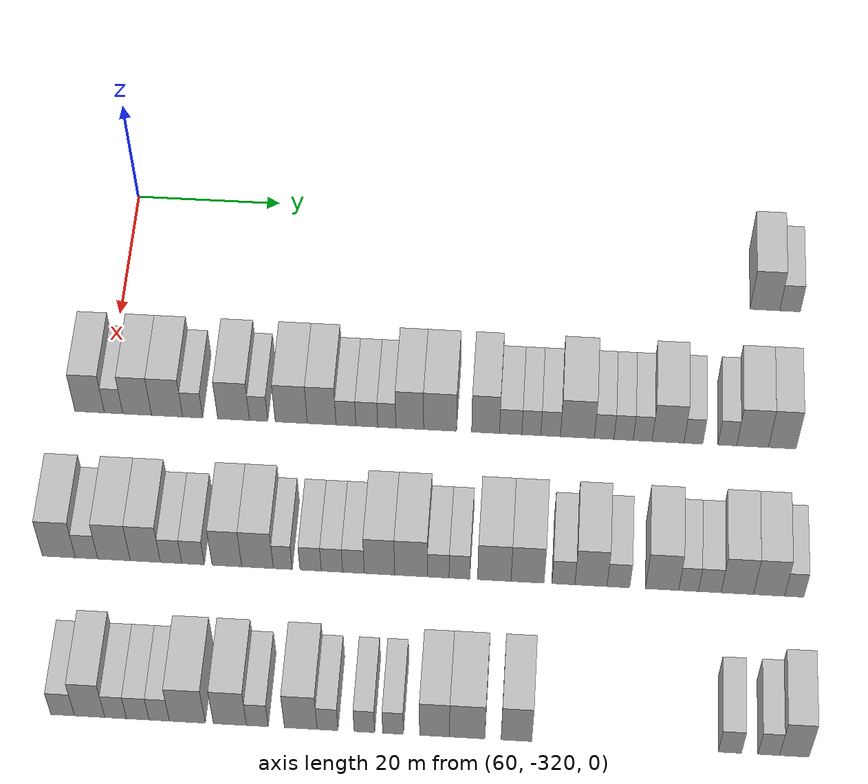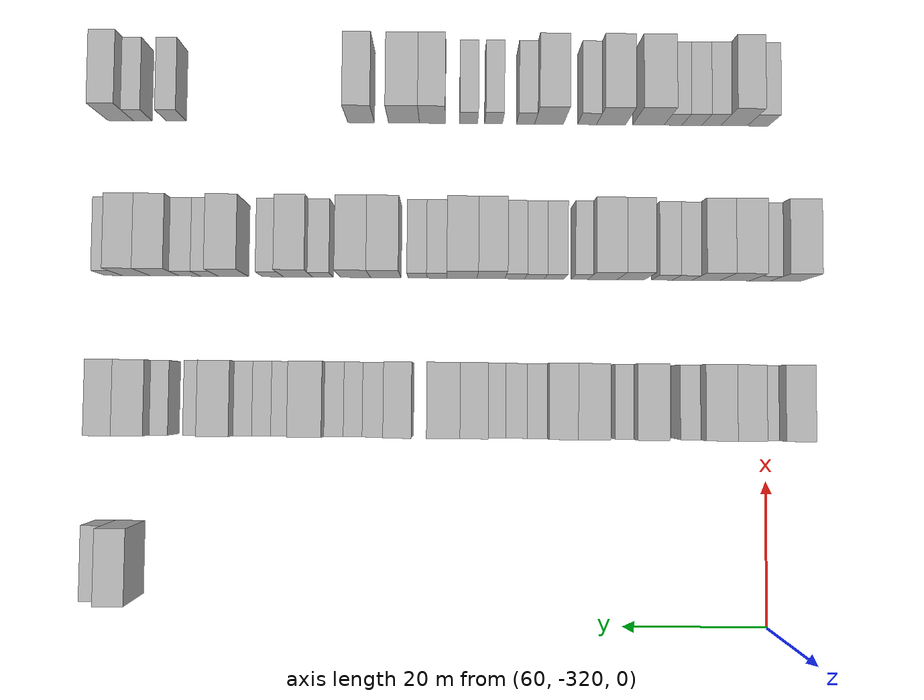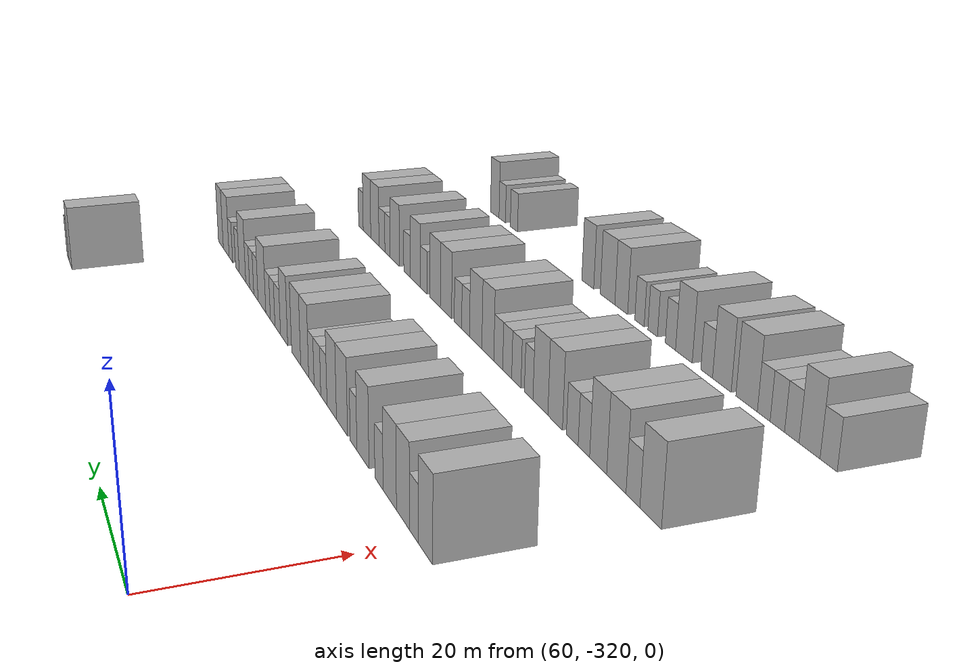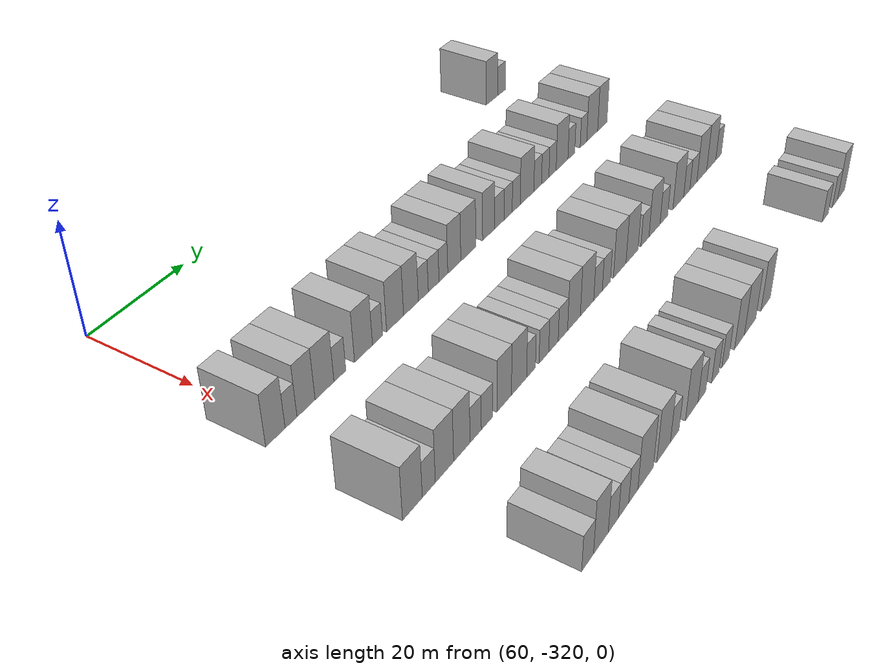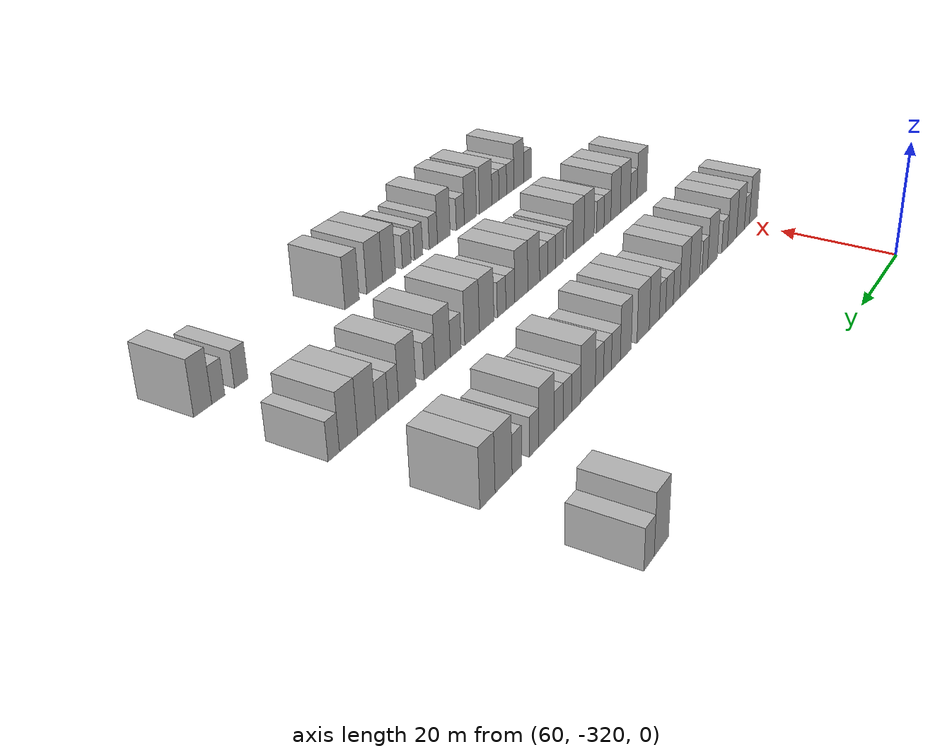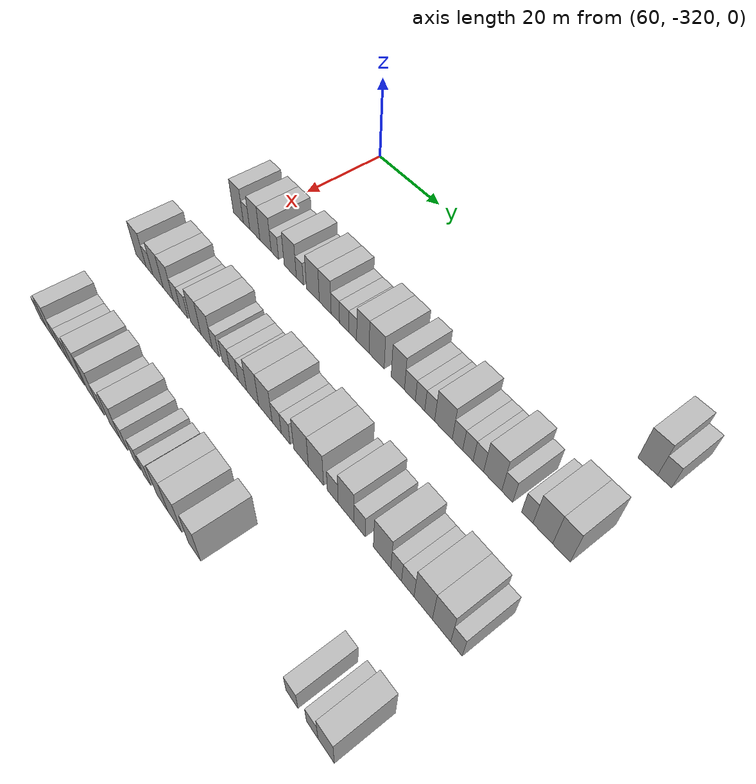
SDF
<sdf version="1.6">
 <world name="default">
  <model name="building_404">
   <static>1</static>
   <pose>69.0000 -232.0221 0 0.000000 0.000000 0.000000</pose>
   <link name="link">
    <pose>0 0 4.50 0 0 0</pose>
    <collision name="collision"><geometry><box><size>10.0000 4.0621 9.0000</size></box></geometry></collision>
    <visual name="visual">
     <cast_shadows>0</cast_shadows>
     <geometry><box><size>10.0000 4.0621 9.0000</size></box></geometry>
     <material>
      <script>
       <uri>model://HANNAS_wall/materials/scripts</uri>
       <uri>model://HANNAS_wall/materials/textures</uri>
       <name>vrc/HANNAS_wall</name>
      </script>
     </material>
    </visual>
   </link>
  </model>
  <model name="building_405">
   <static>1</static>
   <pose>69.0000 -228.5827 0 0.000000 0.000000 0.000000</pose>
   <link name="link">
    <pose>0 0 3.00 0 0 0</pose>
    <collision name="collision"><geometry><box><size>10.0000 2.8167 6.0000</size></box></geometry></collision>
    <visual name="visual">
     <cast_shadows>0</cast_shadows>
     <geometry><box><size>10.0000 2.8167 6.0000</size></box></geometry>
     <material>
      <script>
       <uri>model://HANNAS_wall/materials/scripts</uri>
       <uri>model://HANNAS_wall/materials/textures</uri>
       <name>vrc/HANNAS_wall</name>
      </script>
     </material>
    </visual>
   </link>
  </model>
  <model name="building_573">
   <static>1</static>
   <pose>91.0000 -321.9920 0 0.000000 0.000000 0.000000</pose>
   <link name="link">
    <pose>0 0 4.50 0 0 0</pose>
    <collision name="collision"><geometry><box><size>10.0000 3.9420 9.0000</size></box></geometry></collision>
    <visual name="visual">
     <cast_shadows>0</cast_shadows>
     <geometry><box><size>10.0000 3.9420 9.0000</size></box></geometry>
     <material>
      <script>
       <uri>model://HANNAS_wall/materials/scripts</uri>
       <uri>model://HANNAS_wall/materials/textures</uri>
       <name>vrc/HANNAS_wall</name>
      </script>
     </material>
    </visual>
   </link>
  </model>
  <model name="building_574">
   <static>1</static>
   <pose>91.0000 -318.7920 0 0.000000 0.000000 0.000000</pose>
   <link name="link">
    <pose>0 0 3.00 0 0 0</pose>
    <collision name="collision"><geometry><box><size>10.0000 2.4579 6.0000</size></box></geometry></collision>
    <visual name="visual">
     <cast_shadows>0</cast_shadows>
     <geometry><box><size>10.0000 2.4579 6.0000</size></box></geometry>
     <material>
      <script>
       <uri>model://HANNAS_wall/materials/scripts</uri>
       <uri>model://HANNAS_wall/materials/textures</uri>
       <name>vrc/HANNAS_wall</name>
      </script>
     </material>
    </visual>
   </link>
  </model>
  <model name="building_575">
   <static>1</static>
   <pose>91.0000 -315.6370 0 0.000000 0.000000 0.000000</pose>
   <link name="link">
    <pose>0 0 4.50 0 0 0</pose>
    <collision name="collision"><geometry><box><size>10.0000 3.8522 9.0000</size></box></geometry></collision>
    <visual name="visual">
     <cast_shadows>0</cast_shadows>
     <geometry><box><size>10.0000 3.8522 9.0000</size></box></geometry>
     <material>
      <script>
       <uri>model://HANNAS_wall/materials/scripts</uri>
       <uri>model://HANNAS_wall/materials/textures</uri>
       <name>vrc/HANNAS_wall</name>
      </script>
     </material>
    </visual>
   </link>
  </model>
  <model name="building_576">
   <static>1</static>
   <pose>91.0000 -311.6289 0 0.000000 0.000000 0.000000</pose>
   <link name="link">
    <pose>0 0 4.50 0 0 0</pose>
    <collision name="collision"><geometry><box><size>10.0000 4.1640 9.0000</size></box></geometry></collision>
    <visual name="visual">
     <cast_shadows>0</cast_shadows>
     <geometry><box><size>10.0000 4.1640 9.0000</size></box></geometry>
     <material>
      <script>
       <uri>model://HANNAS_wall/materials/scripts</uri>
       <uri>model://HANNAS_wall/materials/textures</uri>
       <name>vrc/HANNAS_wall</name>
      </script>
     </material>
    </visual>
   </link>
  </model>
  <model name="building_577">
   <static>1</static>
   <pose>91.0000 -308.2008 0 0.000000 0.000000 0.000000</pose>
   <link name="link">
    <pose>0 0 3.00 0 0 0</pose>
    <collision name="collision"><geometry><box><size>10.0000 2.6922 6.0000</size></box></geometry></collision>
    <visual name="visual">
     <cast_shadows>0</cast_shadows>
     <geometry><box><size>10.0000 2.6922 6.0000</size></box></geometry>
     <material>
      <script>
       <uri>model://HANNAS_wall/materials/scripts</uri>
       <uri>model://HANNAS_wall/materials/textures</uri>
       <name>vrc/HANNAS_wall</name>
      </script>
     </material>
    </visual>
   </link>
  </model>
  <model name="building_578">
   <static>1</static>
   <pose>91.0000 -302.7324 0 0.000000 0.000000 0.000000</pose>
   <link name="link">
    <pose>0 0 4.50 0 0 0</pose>
    <collision name="collision"><geometry><box><size>10.0000 4.2447 9.0000</size></box></geometry></collision>
    <visual name="visual">
     <cast_shadows>0</cast_shadows>
     <geometry><box><size>10.0000 4.2447 9.0000</size></box></geometry>
     <material>
      <script>
       <uri>model://HANNAS_wall/materials/scripts</uri>
       <uri>model://HANNAS_wall/materials/textures</uri>
       <name>vrc/HANNAS_wall</name>
      </script>
     </material>
    </visual>
   </link>
  </model>
  <model name="building_579">
   <static>1</static>
   <pose>91.0000 -299.3903 0 0.000000 0.000000 0.000000</pose>
   <link name="link">
    <pose>0 0 3.00 0 0 0</pose>
    <collision name="collision"><geometry><box><size>10.0000 2.4395 6.0000</size></box></geometry></collision>
    <visual name="visual">
     <cast_shadows>0</cast_shadows>
     <geometry><box><size>10.0000 2.4395 6.0000</size></box></geometry>
     <material>
      <script>
       <uri>model://HANNAS_wall/materials/scripts</uri>
       <uri>model://HANNAS_wall/materials/textures</uri>
       <name>vrc/HANNAS_wall</name>
      </script>
     </material>
    </visual>
   </link>
  </model>
  <model name="building_580">
   <static>1</static>
   <pose>91.0000 -295.0295 0 0.000000 0.000000 0.000000</pose>
   <link name="link">
    <pose>0 0 4.50 0 0 0</pose>
    <collision name="collision"><geometry><box><size>10.0000 4.2821 9.0000</size></box></geometry></collision>
    <visual name="visual">
     <cast_shadows>0</cast_shadows>
     <geometry><box><size>10.0000 4.2821 9.0000</size></box></geometry>
     <material>
      <script>
       <uri>model://HANNAS_wall/materials/scripts</uri>
       <uri>model://HANNAS_wall/materials/textures</uri>
       <name>vrc/HANNAS_wall</name>
      </script>
     </material>
    </visual>
   </link>
  </model>
  <model name="building_581">
   <static>1</static>
   <pose>91.0000 -290.9783 0 0.000000 0.000000 0.000000</pose>
   <link name="link">
    <pose>0 0 4.50 0 0 0</pose>
    <collision name="collision"><geometry><box><size>10.0000 3.8203 9.0000</size></box></geometry></collision>
    <visual name="visual">
     <cast_shadows>0</cast_shadows>
     <geometry><box><size>10.0000 3.8203 9.0000</size></box></geometry>
     <material>
      <script>
       <uri>model://HANNAS_wall/materials/scripts</uri>
       <uri>model://HANNAS_wall/materials/textures</uri>
       <name>vrc/HANNAS_wall</name>
      </script>
     </material>
    </visual>
   </link>
  </model>
  <model name="building_582">
   <static>1</static>
   <pose>91.0000 -287.7478 0 0.000000 0.000000 0.000000</pose>
   <link name="link">
    <pose>0 0 3.00 0 0 0</pose>
    <collision name="collision"><geometry><box><size>10.0000 2.6407 6.0000</size></box></geometry></collision>
    <visual name="visual">
     <cast_shadows>0</cast_shadows>
     <geometry><box><size>10.0000 2.6407 6.0000</size></box></geometry>
     <material>
      <script>
       <uri>model://HANNAS_wall/materials/scripts</uri>
       <uri>model://HANNAS_wall/materials/textures</uri>
       <name>vrc/HANNAS_wall</name>
      </script>
     </material>
    </visual>
   </link>
  </model>
  <model name="building_583">
   <static>1</static>
   <pose>91.0000 -284.9772 0 0.000000 0.000000 0.000000</pose>
   <link name="link">
    <pose>0 0 3.00 0 0 0</pose>
    <collision name="collision"><geometry><box><size>10.0000 2.9005 6.0000</size></box></geometry></collision>
    <visual name="visual">
     <cast_shadows>0</cast_shadows>
     <geometry><box><size>10.0000 2.9005 6.0000</size></box></geometry>
     <material>
      <script>
       <uri>model://HANNAS_wall/materials/scripts</uri>
       <uri>model://HANNAS_wall/materials/textures</uri>
       <name>vrc/HANNAS_wall</name>
      </script>
     </material>
    </visual>
   </link>
  </model>
  <model name="building_584">
   <static>1</static>
   <pose>91.0000 -282.3179 0 0.000000 0.000000 0.000000</pose>
   <link name="link">
    <pose>0 0 3.00 0 0 0</pose>
    <collision name="collision"><geometry><box><size>10.0000 2.4183 6.0000</size></box></geometry></collision>
    <visual name="visual">
     <cast_shadows>0</cast_shadows>
     <geometry><box><size>10.0000 2.4183 6.0000</size></box></geometry>
     <material>
      <script>
       <uri>model://HANNAS_wall/materials/scripts</uri>
       <uri>model://HANNAS_wall/materials/textures</uri>
       <name>vrc/HANNAS_wall</name>
      </script>
     </material>
    </visual>
   </link>
  </model>
  <model name="building_585">
   <static>1</static>
   <pose>91.0000 -279.2611 0 0.000000 0.000000 0.000000</pose>
   <link name="link">
    <pose>0 0 4.50 0 0 0</pose>
    <collision name="collision"><geometry><box><size>10.0000 3.6953 9.0000</size></box></geometry></collision>
    <visual name="visual">
     <cast_shadows>0</cast_shadows>
     <geometry><box><size>10.0000 3.6953 9.0000</size></box></geometry>
     <material>
      <script>
       <uri>model://HANNAS_wall/materials/scripts</uri>
       <uri>model://HANNAS_wall/materials/textures</uri>
       <name>vrc/HANNAS_wall</name>
      </script>
     </material>
    </visual>
   </link>
  </model>
  <model name="building_586">
   <static>1</static>
   <pose>91.0000 -275.2277 0 0.000000 0.000000 0.000000</pose>
   <link name="link">
    <pose>0 0 4.50 0 0 0</pose>
    <collision name="collision"><geometry><box><size>10.0000 4.3714 9.0000</size></box></geometry></collision>
    <visual name="visual">
     <cast_shadows>0</cast_shadows>
     <geometry><box><size>10.0000 4.3714 9.0000</size></box></geometry>
     <material>
      <script>
       <uri>model://HANNAS_wall/materials/scripts</uri>
       <uri>model://HANNAS_wall/materials/textures</uri>
       <name>vrc/HANNAS_wall</name>
      </script>
     </material>
    </visual>
   </link>
  </model>
  <model name="building_587">
   <static>1</static>
   <pose>91.0000 -269.1946 0 0.000000 0.000000 0.000000</pose>
   <link name="link">
    <pose>0 0 4.50 0 0 0</pose>
    <collision name="collision"><geometry><box><size>10.0000 3.6949 9.0000</size></box></geometry></collision>
    <visual name="visual">
     <cast_shadows>0</cast_shadows>
     <geometry><box><size>10.0000 3.6949 9.0000</size></box></geometry>
     <material>
      <script>
       <uri>model://HANNAS_wall/materials/scripts</uri>
       <uri>model://HANNAS_wall/materials/textures</uri>
       <name>vrc/HANNAS_wall</name>
      </script>
     </material>
    </visual>
   </link>
  </model>
  <model name="building_588">
   <static>1</static>
   <pose>91.0000 -265.8717 0 0.000000 0.000000 0.000000</pose>
   <link name="link">
    <pose>0 0 3.00 0 0 0</pose>
    <collision name="collision"><geometry><box><size>10.0000 2.9510 6.0000</size></box></geometry></collision>
    <visual name="visual">
     <cast_shadows>0</cast_shadows>
     <geometry><box><size>10.0000 2.9510 6.0000</size></box></geometry>
     <material>
      <script>
       <uri>model://HANNAS_wall/materials/scripts</uri>
       <uri>model://HANNAS_wall/materials/textures</uri>
       <name>vrc/HANNAS_wall</name>
      </script>
     </material>
    </visual>
   </link>
  </model>
  <model name="building_589">
   <static>1</static>
   <pose>91.0000 -263.1401 0 0.000000 0.000000 0.000000</pose>
   <link name="link">
    <pose>0 0 3.00 0 0 0</pose>
    <collision name="collision"><geometry><box><size>10.0000 2.5123 6.0000</size></box></geometry></collision>
    <visual name="visual">
     <cast_shadows>0</cast_shadows>
     <geometry><box><size>10.0000 2.5123 6.0000</size></box></geometry>
     <material>
      <script>
       <uri>model://HANNAS_wall/materials/scripts</uri>
       <uri>model://HANNAS_wall/materials/textures</uri>
       <name>vrc/HANNAS_wall</name>
      </script>
     </material>
    </visual>
   </link>
  </model>
  <model name="building_590">
   <static>1</static>
   <pose>91.0000 -260.5889 0 0.000000 0.000000 0.000000</pose>
   <link name="link">
    <pose>0 0 3.00 0 0 0</pose>
    <collision name="collision"><geometry><box><size>10.0000 2.5900 6.0000</size></box></geometry></collision>
    <visual name="visual">
     <cast_shadows>0</cast_shadows>
     <geometry><box><size>10.0000 2.5900 6.0000</size></box></geometry>
     <material>
      <script>
       <uri>model://HANNAS_wall/materials/scripts</uri>
       <uri>model://HANNAS_wall/materials/textures</uri>
       <name>vrc/HANNAS_wall</name>
      </script>
     </material>
    </visual>
   </link>
  </model>
  <model name="building_591">
   <static>1</static>
   <pose>91.0000 -257.0452 0 0.000000 0.000000 0.000000</pose>
   <link name="link">
    <pose>0 0 4.50 0 0 0</pose>
    <collision name="collision"><geometry><box><size>10.0000 4.4974 9.0000</size></box></geometry></collision>
    <visual name="visual">
     <cast_shadows>0</cast_shadows>
     <geometry><box><size>10.0000 4.4974 9.0000</size></box></geometry>
     <material>
      <script>
       <uri>model://HANNAS_wall/materials/scripts</uri>
       <uri>model://HANNAS_wall/materials/textures</uri>
       <name>vrc/HANNAS_wall</name>
      </script>
     </material>
    </visual>
   </link>
  </model>
  <model name="building_592">
   <static>1</static>
   <pose>91.0000 -253.4997 0 0.000000 0.000000 0.000000</pose>
   <link name="link">
    <pose>0 0 3.00 0 0 0</pose>
    <collision name="collision"><geometry><box><size>10.0000 2.5936 6.0000</size></box></geometry></collision>
    <visual name="visual">
     <cast_shadows>0</cast_shadows>
     <geometry><box><size>10.0000 2.5936 6.0000</size></box></geometry>
     <material>
      <script>
       <uri>model://HANNAS_wall/materials/scripts</uri>
       <uri>model://HANNAS_wall/materials/textures</uri>
       <name>vrc/HANNAS_wall</name>
      </script>
     </material>
    </visual>
   </link>
  </model>
  <model name="building_593">
   <static>1</static>
   <pose>91.0000 -250.9337 0 0.000000 0.000000 0.000000</pose>
   <link name="link">
    <pose>0 0 3.00 0 0 0</pose>
    <collision name="collision"><geometry><box><size>10.0000 2.5385 6.0000</size></box></geometry></collision>
    <visual name="visual">
     <cast_shadows>0</cast_shadows>
     <geometry><box><size>10.0000 2.5385 6.0000</size></box></geometry>
     <material>
      <script>
       <uri>model://HANNAS_wall/materials/scripts</uri>
       <uri>model://HANNAS_wall/materials/textures</uri>
       <name>vrc/HANNAS_wall</name>
      </script>
     </material>
    </visual>
   </link>
  </model>
  <model name="building_594">
   <static>1</static>
   <pose>91.0000 -248.4190 0 0.000000 0.000000 0.000000</pose>
   <link name="link">
    <pose>0 0 3.00 0 0 0</pose>
    <collision name="collision"><geometry><box><size>10.0000 2.4909 6.0000</size></box></geometry></collision>
    <visual name="visual">
     <cast_shadows>0</cast_shadows>
     <geometry><box><size>10.0000 2.4909 6.0000</size></box></geometry>
     <material>
      <script>
       <uri>model://HANNAS_wall/materials/scripts</uri>
       <uri>model://HANNAS_wall/materials/textures</uri>
       <name>vrc/HANNAS_wall</name>
      </script>
     </material>
    </visual>
   </link>
  </model>
  <model name="building_595">
   <static>1</static>
   <pose>91.0000 -245.0603 0 0.000000 0.000000 0.000000</pose>
   <link name="link">
    <pose>0 0 4.50 0 0 0</pose>
    <collision name="collision"><geometry><box><size>10.0000 4.2266 9.0000</size></box></geometry></collision>
    <visual name="visual">
     <cast_shadows>0</cast_shadows>
     <geometry><box><size>10.0000 4.2266 9.0000</size></box></geometry>
     <material>
      <script>
       <uri>model://HANNAS_wall/materials/scripts</uri>
       <uri>model://HANNAS_wall/materials/textures</uri>
       <name>vrc/HANNAS_wall</name>
      </script>
     </material>
    </visual>
   </link>
  </model>
  <model name="building_596">
   <static>1</static>
   <pose>91.0000 -241.7044 0 0.000000 0.000000 0.000000</pose>
   <link name="link">
    <pose>0 0 3.00 0 0 0</pose>
    <collision name="collision"><geometry><box><size>10.0000 2.4851 6.0000</size></box></geometry></collision>
    <visual name="visual">
     <cast_shadows>0</cast_shadows>
     <geometry><box><size>10.0000 2.4851 6.0000</size></box></geometry>
     <material>
      <script>
       <uri>model://HANNAS_wall/materials/scripts</uri>
       <uri>model://HANNAS_wall/materials/textures</uri>
       <name>vrc/HANNAS_wall</name>
      </script>
     </material>
    </visual>
   </link>
  </model>
  <model name="building_597">
   <static>1</static>
   <pose>91.0000 -237.2275 0 0.000000 0.000000 0.000000</pose>
   <link name="link">
    <pose>0 0 3.00 0 0 0</pose>
    <collision name="collision"><geometry><box><size>10.0000 2.4687 6.0000</size></box></geometry></collision>
    <visual name="visual">
     <cast_shadows>0</cast_shadows>
     <geometry><box><size>10.0000 2.4687 6.0000</size></box></geometry>
     <material>
      <script>
       <uri>model://HANNAS_wall/materials/scripts</uri>
       <uri>model://HANNAS_wall/materials/textures</uri>
       <name>vrc/HANNAS_wall</name>
      </script>
     </material>
    </visual>
   </link>
  </model>
  <model name="building_598">
   <static>1</static>
   <pose>91.0000 -233.8986 0 0.000000 0.000000 0.000000</pose>
   <link name="link">
    <pose>0 0 4.50 0 0 0</pose>
    <collision name="collision"><geometry><box><size>10.0000 4.1891 9.0000</size></box></geometry></collision>
    <visual name="visual">
     <cast_shadows>0</cast_shadows>
     <geometry><box><size>10.0000 4.1891 9.0000</size></box></geometry>
     <material>
      <script>
       <uri>model://HANNAS_wall/materials/scripts</uri>
       <uri>model://HANNAS_wall/materials/textures</uri>
       <name>vrc/HANNAS_wall</name>
      </script>
     </material>
    </visual>
   </link>
  </model>
  <model name="building_599">
   <static>1</static>
   <pose>91.0000 -229.9872 0 0.000000 0.000000 0.000000</pose>
   <link name="link">
    <pose>0 0 4.50 0 0 0</pose>
    <collision name="collision"><geometry><box><size>10.0000 3.6336 9.0000</size></box></geometry></collision>
    <visual name="visual">
     <cast_shadows>0</cast_shadows>
     <geometry><box><size>10.0000 3.6336 9.0000</size></box></geometry>
     <material>
      <script>
       <uri>model://HANNAS_wall/materials/scripts</uri>
       <uri>model://HANNAS_wall/materials/textures</uri>
       <name>vrc/HANNAS_wall</name>
      </script>
     </material>
    </visual>
   </link>
  </model>
  <model name="building_765">
   <static>1</static>
   <pose>113.0000 -322.9274 0 0.000000 0.000000 0.000000</pose>
   <link name="link">
    <pose>0 0 4.50 0 0 0</pose>
    <collision name="collision"><geometry><box><size>10.0000 4.2592 9.0000</size></box></geometry></collision>
    <visual name="visual">
     <cast_shadows>0</cast_shadows>
     <geometry><box><size>10.0000 4.2592 9.0000</size></box></geometry>
     <material>
      <script>
       <uri>model://HANNAS_wall/materials/scripts</uri>
       <uri>model://HANNAS_wall/materials/textures</uri>
       <name>vrc/HANNAS_wall</name>
      </script>
     </material>
    </visual>
   </link>
  </model>
  <model name="building_766">
   <static>1</static>
   <pose>113.0000 -319.3512 0 0.000000 0.000000 0.000000</pose>
   <link name="link">
    <pose>0 0 3.00 0 0 0</pose>
    <collision name="collision"><geometry><box><size>10.0000 2.8931 6.0000</size></box></geometry></collision>
    <visual name="visual">
     <cast_shadows>0</cast_shadows>
     <geometry><box><size>10.0000 2.8931 6.0000</size></box></geometry>
     <material>
      <script>
       <uri>model://HANNAS_wall/materials/scripts</uri>
       <uri>model://HANNAS_wall/materials/textures</uri>
       <name>vrc/HANNAS_wall</name>
      </script>
     </material>
    </visual>
   </link>
  </model>
  <model name="building_767">
   <static>1</static>
   <pose>113.0000 -315.8047 0 0.000000 0.000000 0.000000</pose>
   <link name="link">
    <pose>0 0 4.50 0 0 0</pose>
    <collision name="collision"><geometry><box><size>10.0000 4.1999 9.0000</size></box></geometry></collision>
    <visual name="visual">
     <cast_shadows>0</cast_shadows>
     <geometry><box><size>10.0000 4.1999 9.0000</size></box></geometry>
     <material>
      <script>
       <uri>model://HANNAS_wall/materials/scripts</uri>
       <uri>model://HANNAS_wall/materials/textures</uri>
       <name>vrc/HANNAS_wall</name>
      </script>
     </material>
    </visual>
   </link>
  </model>
  <model name="building_768">
   <static>1</static>
   <pose>113.0000 -311.7571 0 0.000000 0.000000 0.000000</pose>
   <link name="link">
    <pose>0 0 4.50 0 0 0</pose>
    <collision name="collision"><geometry><box><size>10.0000 3.8954 9.0000</size></box></geometry></collision>
    <visual name="visual">
     <cast_shadows>0</cast_shadows>
     <geometry><box><size>10.0000 3.8954 9.0000</size></box></geometry>
     <material>
      <script>
       <uri>model://HANNAS_wall/materials/scripts</uri>
       <uri>model://HANNAS_wall/materials/textures</uri>
       <name>vrc/HANNAS_wall</name>
      </script>
     </material>
    </visual>
   </link>
  </model>
  <model name="building_769">
   <static>1</static>
   <pose>113.0000 -308.4352 0 0.000000 0.000000 0.000000</pose>
   <link name="link">
    <pose>0 0 3.00 0 0 0</pose>
    <collision name="collision"><geometry><box><size>10.0000 2.7483 6.0000</size></box></geometry></collision>
    <visual name="visual">
     <cast_shadows>0</cast_shadows>
     <geometry><box><size>10.0000 2.7483 6.0000</size></box></geometry>
     <material>
      <script>
       <uri>model://HANNAS_wall/materials/scripts</uri>
       <uri>model://HANNAS_wall/materials/textures</uri>
       <name>vrc/HANNAS_wall</name>
      </script>
     </material>
    </visual>
   </link>
  </model>
  <model name="building_770">
   <static>1</static>
   <pose>113.0000 -305.6102 0 0.000000 0.000000 0.000000</pose>
   <link name="link">
    <pose>0 0 3.00 0 0 0</pose>
    <collision name="collision"><geometry><box><size>10.0000 2.9017 6.0000</size></box></geometry></collision>
    <visual name="visual">
     <cast_shadows>0</cast_shadows>
     <geometry><box><size>10.0000 2.9017 6.0000</size></box></geometry>
     <material>
      <script>
       <uri>model://HANNAS_wall/materials/scripts</uri>
       <uri>model://HANNAS_wall/materials/textures</uri>
       <name>vrc/HANNAS_wall</name>
      </script>
     </material>
    </visual>
   </link>
  </model>
  <model name="building_771">
   <static>1</static>
   <pose>113.0000 -301.2559 0 0.000000 0.000000 0.000000</pose>
   <link name="link">
    <pose>0 0 4.50 0 0 0</pose>
    <collision name="collision"><geometry><box><size>10.0000 3.8068 9.0000</size></box></geometry></collision>
    <visual name="visual">
     <cast_shadows>0</cast_shadows>
     <geometry><box><size>10.0000 3.8068 9.0000</size></box></geometry>
     <material>
      <script>
       <uri>model://HANNAS_wall/materials/scripts</uri>
       <uri>model://HANNAS_wall/materials/textures</uri>
       <name>vrc/HANNAS_wall</name>
      </script>
     </material>
    </visual>
   </link>
  </model>
  <model name="building_772">
   <static>1</static>
   <pose>113.0000 -297.3191 0 0.000000 0.000000 0.000000</pose>
   <link name="link">
    <pose>0 0 4.50 0 0 0</pose>
    <collision name="collision"><geometry><box><size>10.0000 4.0668 9.0000</size></box></geometry></collision>
    <visual name="visual">
     <cast_shadows>0</cast_shadows>
     <geometry><box><size>10.0000 4.0668 9.0000</size></box></geometry>
     <material>
      <script>
       <uri>model://HANNAS_wall/materials/scripts</uri>
       <uri>model://HANNAS_wall/materials/textures</uri>
       <name>vrc/HANNAS_wall</name>
      </script>
     </material>
    </visual>
   </link>
  </model>
  <model name="building_773">
   <static>1</static>
   <pose>113.0000 -294.0722 0 0.000000 0.000000 0.000000</pose>
   <link name="link">
    <pose>0 0 3.00 0 0 0</pose>
    <collision name="collision"><geometry><box><size>10.0000 2.4270 6.0000</size></box></geometry></collision>
    <visual name="visual">
     <cast_shadows>0</cast_shadows>
     <geometry><box><size>10.0000 2.4270 6.0000</size></box></geometry>
     <material>
      <script>
       <uri>model://HANNAS_wall/materials/scripts</uri>
       <uri>model://HANNAS_wall/materials/textures</uri>
       <name>vrc/HANNAS_wall</name>
      </script>
     </material>
    </visual>
   </link>
  </model>
  <model name="building_774">
   <static>1</static>
   <pose>113.0000 -290.4904 0 0.000000 0.000000 0.000000</pose>
   <link name="link">
    <pose>0 0 3.00 0 0 0</pose>
    <collision name="collision"><geometry><box><size>10.0000 2.7368 6.0000</size></box></geometry></collision>
    <visual name="visual">
     <cast_shadows>0</cast_shadows>
     <geometry><box><size>10.0000 2.7368 6.0000</size></box></geometry>
     <material>
      <script>
       <uri>model://HANNAS_wall/materials/scripts</uri>
       <uri>model://HANNAS_wall/materials/textures</uri>
       <name>vrc/HANNAS_wall</name>
      </script>
     </material>
    </visual>
   </link>
  </model>
  <model name="building_775">
   <static>1</static>
   <pose>113.0000 -287.7537 0 0.000000 0.000000 0.000000</pose>
   <link name="link">
    <pose>0 0 3.00 0 0 0</pose>
    <collision name="collision"><geometry><box><size>10.0000 2.7366 6.0000</size></box></geometry></collision>
    <visual name="visual">
     <cast_shadows>0</cast_shadows>
     <geometry><box><size>10.0000 2.7366 6.0000</size></box></geometry>
     <material>
      <script>
       <uri>model://HANNAS_wall/materials/scripts</uri>
       <uri>model://HANNAS_wall/materials/textures</uri>
       <name>vrc/HANNAS_wall</name>
      </script>
     </material>
    </visual>
   </link>
  </model>
  <model name="building_776">
   <static>1</static>
   <pose>113.0000 -284.9900 0 0.000000 0.000000 0.000000</pose>
   <link name="link">
    <pose>0 0 3.00 0 0 0</pose>
    <collision name="collision"><geometry><box><size>10.0000 2.7908 6.0000</size></box></geometry></collision>
    <visual name="visual">
     <cast_shadows>0</cast_shadows>
     <geometry><box><size>10.0000 2.7908 6.0000</size></box></geometry>
     <material>
      <script>
       <uri>model://HANNAS_wall/materials/scripts</uri>
       <uri>model://HANNAS_wall/materials/textures</uri>
       <name>vrc/HANNAS_wall</name>
      </script>
     </material>
    </visual>
   </link>
  </model>
  <model name="building_777">
   <static>1</static>
   <pose>113.0000 -281.6524 0 0.000000 0.000000 0.000000</pose>
   <link name="link">
    <pose>0 0 4.50 0 0 0</pose>
    <collision name="collision"><geometry><box><size>10.0000 3.8845 9.0000</size></box></geometry></collision>
    <visual name="visual">
     <cast_shadows>0</cast_shadows>
     <geometry><box><size>10.0000 3.8845 9.0000</size></box></geometry>
     <material>
      <script>
       <uri>model://HANNAS_wall/materials/scripts</uri>
       <uri>model://HANNAS_wall/materials/textures</uri>
       <name>vrc/HANNAS_wall</name>
      </script>
     </material>
    </visual>
   </link>
  </model>
  <model name="building_778">
   <static>1</static>
   <pose>113.0000 -277.6161 0 0.000000 0.000000 0.000000</pose>
   <link name="link">
    <pose>0 0 4.50 0 0 0</pose>
    <collision name="collision"><geometry><box><size>10.0000 4.1882 9.0000</size></box></geometry></collision>
    <visual name="visual">
     <cast_shadows>0</cast_shadows>
     <geometry><box><size>10.0000 4.1882 9.0000</size></box></geometry>
     <material>
      <script>
       <uri>model://HANNAS_wall/materials/scripts</uri>
       <uri>model://HANNAS_wall/materials/textures</uri>
       <name>vrc/HANNAS_wall</name>
      </script>
     </material>
    </visual>
   </link>
  </model>
  <model name="building_779">
   <static>1</static>
   <pose>113.0000 -274.1437 0 0.000000 0.000000 0.000000</pose>
   <link name="link">
    <pose>0 0 3.00 0 0 0</pose>
    <collision name="collision"><geometry><box><size>10.0000 2.7565 6.0000</size></box></geometry></collision>
    <visual name="visual">
     <cast_shadows>0</cast_shadows>
     <geometry><box><size>10.0000 2.7565 6.0000</size></box></geometry>
     <material>
      <script>
       <uri>model://HANNAS_wall/materials/scripts</uri>
       <uri>model://HANNAS_wall/materials/textures</uri>
       <name>vrc/HANNAS_wall</name>
      </script>
     </material>
    </visual>
   </link>
  </model>
  <model name="building_780">
   <static>1</static>
   <pose>113.0000 -271.4380 0 0.000000 0.000000 0.000000</pose>
   <link name="link">
    <pose>0 0 3.00 0 0 0</pose>
    <collision name="collision"><geometry><box><size>10.0000 2.6548 6.0000</size></box></geometry></collision>
    <visual name="visual">
     <cast_shadows>0</cast_shadows>
     <geometry><box><size>10.0000 2.6548 6.0000</size></box></geometry>
     <material>
      <script>
       <uri>model://HANNAS_wall/materials/scripts</uri>
       <uri>model://HANNAS_wall/materials/textures</uri>
       <name>vrc/HANNAS_wall</name>
      </script>
     </material>
    </visual>
   </link>
  </model>
  <model name="building_781">
   <static>1</static>
   <pose>113.0000 -266.9808 0 0.000000 0.000000 0.000000</pose>
   <link name="link">
    <pose>0 0 4.50 0 0 0</pose>
    <collision name="collision"><geometry><box><size>10.0000 4.2597 9.0000</size></box></geometry></collision>
    <visual name="visual">
     <cast_shadows>0</cast_shadows>
     <geometry><box><size>10.0000 4.2597 9.0000</size></box></geometry>
     <material>
      <script>
       <uri>model://HANNAS_wall/materials/scripts</uri>
       <uri>model://HANNAS_wall/materials/textures</uri>
       <name>vrc/HANNAS_wall</name>
      </script>
     </material>
    </visual>
   </link>
  </model>
  <model name="building_782">
   <static>1</static>
   <pose>113.0000 -262.7436 0 0.000000 0.000000 0.000000</pose>
   <link name="link">
    <pose>0 0 4.50 0 0 0</pose>
    <collision name="collision"><geometry><box><size>10.0000 4.2147 9.0000</size></box></geometry></collision>
    <visual name="visual">
     <cast_shadows>0</cast_shadows>
     <geometry><box><size>10.0000 4.2147 9.0000</size></box></geometry>
     <material>
      <script>
       <uri>model://HANNAS_wall/materials/scripts</uri>
       <uri>model://HANNAS_wall/materials/textures</uri>
       <name>vrc/HANNAS_wall</name>
      </script>
     </material>
    </visual>
   </link>
  </model>
  <model name="building_783">
   <static>1</static>
   <pose>113.0000 -258.1741 0 0.000000 0.000000 0.000000</pose>
   <link name="link">
    <pose>0 0 3.00 0 0 0</pose>
    <collision name="collision"><geometry><box><size>10.0000 2.9243 6.0000</size></box></geometry></collision>
    <visual name="visual">
     <cast_shadows>0</cast_shadows>
     <geometry><box><size>10.0000 2.9243 6.0000</size></box></geometry>
     <material>
      <script>
       <uri>model://HANNAS_wall/materials/scripts</uri>
       <uri>model://HANNAS_wall/materials/textures</uri>
       <name>vrc/HANNAS_wall</name>
      </script>
     </material>
    </visual>
   </link>
  </model>
  <model name="building_784">
   <static>1</static>
   <pose>113.0000 -254.6678 0 0.000000 0.000000 0.000000</pose>
   <link name="link">
    <pose>0 0 4.50 0 0 0</pose>
    <collision name="collision"><geometry><box><size>10.0000 4.0881 9.0000</size></box></geometry></collision>
    <visual name="visual">
     <cast_shadows>0</cast_shadows>
     <geometry><box><size>10.0000 4.0881 9.0000</size></box></geometry>
     <material>
      <script>
       <uri>model://HANNAS_wall/materials/scripts</uri>
       <uri>model://HANNAS_wall/materials/textures</uri>
       <name>vrc/HANNAS_wall</name>
      </script>
     </material>
    </visual>
   </link>
  </model>
  <model name="building_785">
   <static>1</static>
   <pose>113.0000 -251.1724 0 0.000000 0.000000 0.000000</pose>
   <link name="link">
    <pose>0 0 3.00 0 0 0</pose>
    <collision name="collision"><geometry><box><size>10.0000 2.9027 6.0000</size></box></geometry></collision>
    <visual name="visual">
     <cast_shadows>0</cast_shadows>
     <geometry><box><size>10.0000 2.9027 6.0000</size></box></geometry>
     <material>
      <script>
       <uri>model://HANNAS_wall/materials/scripts</uri>
       <uri>model://HANNAS_wall/materials/textures</uri>
       <name>vrc/HANNAS_wall</name>
      </script>
     </material>
    </visual>
   </link>
  </model>
  <model name="building_786">
   <static>1</static>
   <pose>113.0000 -245.5985 0 0.000000 0.000000 0.000000</pose>
   <link name="link">
    <pose>0 0 4.50 0 0 0</pose>
    <collision name="collision"><geometry><box><size>10.0000 4.2452 9.0000</size></box></geometry></collision>
    <visual name="visual">
     <cast_shadows>0</cast_shadows>
     <geometry><box><size>10.0000 4.2452 9.0000</size></box></geometry>
     <material>
      <script>
       <uri>model://HANNAS_wall/materials/scripts</uri>
       <uri>model://HANNAS_wall/materials/textures</uri>
       <name>vrc/HANNAS_wall</name>
      </script>
     </material>
    </visual>
   </link>
  </model>
  <model name="building_787">
   <static>1</static>
   <pose>113.0000 -242.2250 0 0.000000 0.000000 0.000000</pose>
   <link name="link">
    <pose>0 0 3.00 0 0 0</pose>
    <collision name="collision"><geometry><box><size>10.0000 2.5018 6.0000</size></box></geometry></collision>
    <visual name="visual">
     <cast_shadows>0</cast_shadows>
     <geometry><box><size>10.0000 2.5018 6.0000</size></box></geometry>
     <material>
      <script>
       <uri>model://HANNAS_wall/materials/scripts</uri>
       <uri>model://HANNAS_wall/materials/textures</uri>
       <name>vrc/HANNAS_wall</name>
      </script>
     </material>
    </visual>
   </link>
  </model>
  <model name="building_788">
   <static>1</static>
   <pose>113.0000 -239.5333 0 0.000000 0.000000 0.000000</pose>
   <link name="link">
    <pose>0 0 3.00 0 0 0</pose>
    <collision name="collision"><geometry><box><size>10.0000 2.8815 6.0000</size></box></geometry></collision>
    <visual name="visual">
     <cast_shadows>0</cast_shadows>
     <geometry><box><size>10.0000 2.8815 6.0000</size></box></geometry>
     <material>
      <script>
       <uri>model://HANNAS_wall/materials/scripts</uri>
       <uri>model://HANNAS_wall/materials/textures</uri>
       <name>vrc/HANNAS_wall</name>
      </script>
     </material>
    </visual>
   </link>
  </model>
  <model name="building_789">
   <static>1</static>
   <pose>113.0000 -236.0363 0 0.000000 0.000000 0.000000</pose>
   <link name="link">
    <pose>0 0 4.50 0 0 0</pose>
    <collision name="collision"><geometry><box><size>10.0000 4.1125 9.0000</size></box></geometry></collision>
    <visual name="visual">
     <cast_shadows>0</cast_shadows>
     <geometry><box><size>10.0000 4.1125 9.0000</size></box></geometry>
     <material>
      <script>
       <uri>model://HANNAS_wall/materials/scripts</uri>
       <uri>model://HANNAS_wall/materials/textures</uri>
       <name>vrc/HANNAS_wall</name>
      </script>
     </material>
    </visual>
   </link>
  </model>
  <model name="building_790">
   <static>1</static>
   <pose>113.0000 -232.0080 0 0.000000 0.000000 0.000000</pose>
   <link name="link">
    <pose>0 0 4.50 0 0 0</pose>
    <collision name="collision"><geometry><box><size>10.0000 3.9440 9.0000</size></box></geometry></collision>
    <visual name="visual">
     <cast_shadows>0</cast_shadows>
     <geometry><box><size>10.0000 3.9440 9.0000</size></box></geometry>
     <material>
      <script>
       <uri>model://HANNAS_wall/materials/scripts</uri>
       <uri>model://HANNAS_wall/materials/textures</uri>
       <name>vrc/HANNAS_wall</name>
      </script>
     </material>
    </visual>
   </link>
  </model>
  <model name="building_791">
   <static>1</static>
   <pose>113.0000 -228.8177 0 0.000000 0.000000 0.000000</pose>
   <link name="link">
    <pose>0 0 3.00 0 0 0</pose>
    <collision name="collision"><geometry><box><size>10.0000 2.4366 6.0000</size></box></geometry></collision>
    <visual name="visual">
     <cast_shadows>0</cast_shadows>
     <geometry><box><size>10.0000 2.4366 6.0000</size></box></geometry>
     <material>
      <script>
       <uri>model://HANNAS_wall/materials/scripts</uri>
       <uri>model://HANNAS_wall/materials/textures</uri>
       <name>vrc/HANNAS_wall</name>
      </script>
     </material>
    </visual>
   </link>
  </model>
  <model name="building_950">
   <static>1</static>
   <pose>135.0000 -319.2501 0 0.000000 0.000000 0.000000</pose>
   <link name="link">
    <pose>0 0 3.00 0 0 0</pose>
    <collision name="collision"><geometry><box><size>10.0000 2.9464 6.0000</size></box></geometry></collision>
    <visual name="visual">
     <cast_shadows>0</cast_shadows>
     <geometry><box><size>10.0000 2.9464 6.0000</size></box></geometry>
     <material>
      <script>
       <uri>model://HANNAS_wall/materials/scripts</uri>
       <uri>model://HANNAS_wall/materials/textures</uri>
       <name>vrc/HANNAS_wall</name>
      </script>
     </material>
    </visual>
   </link>
  </model>
  <model name="building_951">
   <static>1</static>
   <pose>135.0000 -315.8971 0 0.000000 0.000000 0.000000</pose>
   <link name="link">
    <pose>0 0 4.50 0 0 0</pose>
    <collision name="collision"><geometry><box><size>10.0000 3.7596 9.0000</size></box></geometry></collision>
    <visual name="visual">
     <cast_shadows>0</cast_shadows>
     <geometry><box><size>10.0000 3.7596 9.0000</size></box></geometry>
     <material>
      <script>
       <uri>model://HANNAS_wall/materials/scripts</uri>
       <uri>model://HANNAS_wall/materials/textures</uri>
       <name>vrc/HANNAS_wall</name>
      </script>
     </material>
    </visual>
   </link>
  </model>
  <model name="building_952">
   <static>1</static>
   <pose>135.0000 -312.6708 0 0.000000 0.000000 0.000000</pose>
   <link name="link">
    <pose>0 0 3.00 0 0 0</pose>
    <collision name="collision"><geometry><box><size>10.0000 2.6930 6.0000</size></box></geometry></collision>
    <visual name="visual">
     <cast_shadows>0</cast_shadows>
     <geometry><box><size>10.0000 2.6930 6.0000</size></box></geometry>
     <material>
      <script>
       <uri>model://HANNAS_wall/materials/scripts</uri>
       <uri>model://HANNAS_wall/materials/textures</uri>
       <name>vrc/HANNAS_wall</name>
      </script>
     </material>
    </visual>
   </link>
  </model>
  <model name="building_953">
   <static>1</static>
   <pose>135.0000 -309.9286 0 0.000000 0.000000 0.000000</pose>
   <link name="link">
    <pose>0 0 3.00 0 0 0</pose>
    <collision name="collision"><geometry><box><size>10.0000 2.7915 6.0000</size></box></geometry></collision>
    <visual name="visual">
     <cast_shadows>0</cast_shadows>
     <geometry><box><size>10.0000 2.7915 6.0000</size></box></geometry>
     <material>
      <script>
       <uri>model://HANNAS_wall/materials/scripts</uri>
       <uri>model://HANNAS_wall/materials/textures</uri>
       <name>vrc/HANNAS_wall</name>
      </script>
     </material>
    </visual>
   </link>
  </model>
  <model name="building_954">
   <static>1</static>
   <pose>135.0000 -307.2709 0 0.000000 0.000000 0.000000</pose>
   <link name="link">
    <pose>0 0 3.00 0 0 0</pose>
    <collision name="collision"><geometry><box><size>10.0000 2.5239 6.0000</size></box></geometry></collision>
    <visual name="visual">
     <cast_shadows>0</cast_shadows>
     <geometry><box><size>10.0000 2.5239 6.0000</size></box></geometry>
     <material>
      <script>
       <uri>model://HANNAS_wall/materials/scripts</uri>
       <uri>model://HANNAS_wall/materials/textures</uri>
       <name>vrc/HANNAS_wall</name>
      </script>
     </material>
    </visual>
   </link>
  </model>
  <model name="building_955">
   <static>1</static>
   <pose>135.0000 -303.7838 0 0.000000 0.000000 0.000000</pose>
   <link name="link">
    <pose>0 0 4.50 0 0 0</pose>
    <collision name="collision"><geometry><box><size>10.0000 4.4503 9.0000</size></box></geometry></collision>
    <visual name="visual">
     <cast_shadows>0</cast_shadows>
     <geometry><box><size>10.0000 4.4503 9.0000</size></box></geometry>
     <material>
      <script>
       <uri>model://HANNAS_wall/materials/scripts</uri>
       <uri>model://HANNAS_wall/materials/textures</uri>
       <name>vrc/HANNAS_wall</name>
      </script>
     </material>
    </visual>
   </link>
  </model>
  <model name="building_956">
   <static>1</static>
   <pose>135.0000 -298.5085 0 0.000000 0.000000 0.000000</pose>
   <link name="link">
    <pose>0 0 4.50 0 0 0</pose>
    <collision name="collision"><geometry><box><size>10.0000 4.1004 9.0000</size></box></geometry></collision>
    <visual name="visual">
     <cast_shadows>0</cast_shadows>
     <geometry><box><size>10.0000 4.1004 9.0000</size></box></geometry>
     <material>
      <script>
       <uri>model://HANNAS_wall/materials/scripts</uri>
       <uri>model://HANNAS_wall/materials/textures</uri>
       <name>vrc/HANNAS_wall</name>
      </script>
     </material>
    </visual>
   </link>
  </model>
  <model name="building_957">
   <static>1</static>
   <pose>135.0000 -295.1174 0 0.000000 0.000000 0.000000</pose>
   <link name="link">
    <pose>0 0 3.00 0 0 0</pose>
    <collision name="collision"><geometry><box><size>10.0000 2.6817 6.0000</size></box></geometry></collision>
    <visual name="visual">
     <cast_shadows>0</cast_shadows>
     <geometry><box><size>10.0000 2.6817 6.0000</size></box></geometry>
     <material>
      <script>
       <uri>model://HANNAS_wall/materials/scripts</uri>
       <uri>model://HANNAS_wall/materials/textures</uri>
       <name>vrc/HANNAS_wall</name>
      </script>
     </material>
    </visual>
   </link>
  </model>
  <model name="building_958">
   <static>1</static>
   <pose>135.0000 -289.7554 0 0.000000 0.000000 0.000000</pose>
   <link name="link">
    <pose>0 0 4.50 0 0 0</pose>
    <collision name="collision"><geometry><box><size>10.0000 4.0423 9.0000</size></box></geometry></collision>
    <visual name="visual">
     <cast_shadows>0</cast_shadows>
     <geometry><box><size>10.0000 4.0423 9.0000</size></box></geometry>
     <material>
      <script>
       <uri>model://HANNAS_wall/materials/scripts</uri>
       <uri>model://HANNAS_wall/materials/textures</uri>
       <name>vrc/HANNAS_wall</name>
      </script>
     </material>
    </visual>
   </link>
  </model>
  <model name="building_959">
   <static>1</static>
   <pose>135.0000 -286.4487 0 0.000000 0.000000 0.000000</pose>
   <link name="link">
    <pose>0 0 3.00 0 0 0</pose>
    <collision name="collision"><geometry><box><size>10.0000 2.5711 6.0000</size></box></geometry></collision>
    <visual name="visual">
     <cast_shadows>0</cast_shadows>
     <geometry><box><size>10.0000 2.5711 6.0000</size></box></geometry>
     <material>
      <script>
       <uri>model://HANNAS_wall/materials/scripts</uri>
       <uri>model://HANNAS_wall/materials/textures</uri>
       <name>vrc/HANNAS_wall</name>
      </script>
     </material>
    </visual>
   </link>
  </model>
  <model name="building_960">
   <static>1</static>
   <pose>135.0000 -281.9035 0 0.000000 0.000000 0.000000</pose>
   <link name="link">
    <pose>0 0 3.00 0 0 0</pose>
    <collision name="collision"><geometry><box><size>10.0000 2.5194 6.0000</size></box></geometry></collision>
    <visual name="visual">
     <cast_shadows>0</cast_shadows>
     <geometry><box><size>10.0000 2.5194 6.0000</size></box></geometry>
     <material>
      <script>
       <uri>model://HANNAS_wall/materials/scripts</uri>
       <uri>model://HANNAS_wall/materials/textures</uri>
       <name>vrc/HANNAS_wall</name>
      </script>
     </material>
    </visual>
   </link>
  </model>
  <model name="building_961">
   <static>1</static>
   <pose>135.0000 -278.3737 0 0.000000 0.000000 0.000000</pose>
   <link name="link">
    <pose>0 0 3.00 0 0 0</pose>
    <collision name="collision"><geometry><box><size>10.0000 2.5401 6.0000</size></box></geometry></collision>
    <visual name="visual">
     <cast_shadows>0</cast_shadows>
     <geometry><box><size>10.0000 2.5401 6.0000</size></box></geometry>
     <material>
      <script>
       <uri>model://HANNAS_wall/materials/scripts</uri>
       <uri>model://HANNAS_wall/materials/textures</uri>
       <name>vrc/HANNAS_wall</name>
      </script>
     </material>
    </visual>
   </link>
  </model>
  <model name="building_962">
   <static>1</static>
   <pose>135.0000 -273.2668 0 0.000000 0.000000 0.000000</pose>
   <link name="link">
    <pose>0 0 4.50 0 0 0</pose>
    <collision name="collision"><geometry><box><size>10.0000 3.6738 9.0000</size></box></geometry></collision>
    <visual name="visual">
     <cast_shadows>0</cast_shadows>
     <geometry><box><size>10.0000 3.6738 9.0000</size></box></geometry>
     <material>
      <script>
       <uri>model://HANNAS_wall/materials/scripts</uri>
       <uri>model://HANNAS_wall/materials/textures</uri>
       <name>vrc/HANNAS_wall</name>
      </script>
     </material>
    </visual>
   </link>
  </model>
  <model name="building_963">
   <static>1</static>
   <pose>135.0000 -269.2575 0 0.000000 0.000000 0.000000</pose>
   <link name="link">
    <pose>0 0 4.50 0 0 0</pose>
    <collision name="collision"><geometry><box><size>10.0000 4.3447 9.0000</size></box></geometry></collision>
    <visual name="visual">
     <cast_shadows>0</cast_shadows>
     <geometry><box><size>10.0000 4.3447 9.0000</size></box></geometry>
     <material>
      <script>
       <uri>model://HANNAS_wall/materials/scripts</uri>
       <uri>model://HANNAS_wall/materials/textures</uri>
       <name>vrc/HANNAS_wall</name>
      </script>
     </material>
    </visual>
   </link>
  </model>
  <model name="building_964">
   <static>1</static>
   <pose>135.0000 -263.2087 0 0.000000 0.000000 0.000000</pose>
   <link name="link">
    <pose>0 0 4.50 0 0 0</pose>
    <collision name="collision"><geometry><box><size>10.0000 3.7531 9.0000</size></box></geometry></collision>
    <visual name="visual">
     <cast_shadows>0</cast_shadows>
     <geometry><box><size>10.0000 3.7531 9.0000</size></box></geometry>
     <material>
      <script>
       <uri>model://HANNAS_wall/materials/scripts</uri>
       <uri>model://HANNAS_wall/materials/textures</uri>
       <name>vrc/HANNAS_wall</name>
      </script>
     </material>
    </visual>
   </link>
  </model>
  <model name="building_965">
   <static>1</static>
   <pose>135.0000 -237.0679 0 0.000000 0.000000 0.000000</pose>
   <link name="link">
    <pose>0 0 3.00 0 0 0</pose>
    <collision name="collision"><geometry><box><size>10.0000 2.8428 6.0000</size></box></geometry></collision>
    <visual name="visual">
     <cast_shadows>0</cast_shadows>
     <geometry><box><size>10.0000 2.8428 6.0000</size></box></geometry>
     <material>
      <script>
       <uri>model://HANNAS_wall/materials/scripts</uri>
       <uri>model://HANNAS_wall/materials/textures</uri>
       <name>vrc/HANNAS_wall</name>
      </script>
     </material>
    </visual>
   </link>
  </model>
  <model name="building_966">
   <static>1</static>
   <pose>135.0000 -232.3285 0 0.000000 0.000000 0.000000</pose>
   <link name="link">
    <pose>0 0 3.00 0 0 0</pose>
    <collision name="collision"><geometry><box><size>10.0000 2.6362 6.0000</size></box></geometry></collision>
    <visual name="visual">
     <cast_shadows>0</cast_shadows>
     <geometry><box><size>10.0000 2.6362 6.0000</size></box></geometry>
     <material>
      <script>
       <uri>model://HANNAS_wall/materials/scripts</uri>
       <uri>model://HANNAS_wall/materials/textures</uri>
       <name>vrc/HANNAS_wall</name>
      </script>
     </material>
    </visual>
   </link>
  </model>
  <model name="building_967">
   <static>1</static>
   <pose>135.0000 -229.2082 0 0.000000 0.000000 0.000000</pose>
   <link name="link">
    <pose>0 0 4.50 0 0 0</pose>
    <collision name="collision"><geometry><box><size>10.0000 3.6043 9.0000</size></box></geometry></collision>
    <visual name="visual">
     <cast_shadows>0</cast_shadows>
     <geometry><box><size>10.0000 3.6043 9.0000</size></box></geometry>
     <material>
      <script>
       <uri>model://HANNAS_wall/materials/scripts</uri>
       <uri>model://HANNAS_wall/materials/textures</uri>
       <name>vrc/HANNAS_wall</name>
      </script>
     </material>
    </visual>
   </link>
  </model>
 </world>
</sdf>
